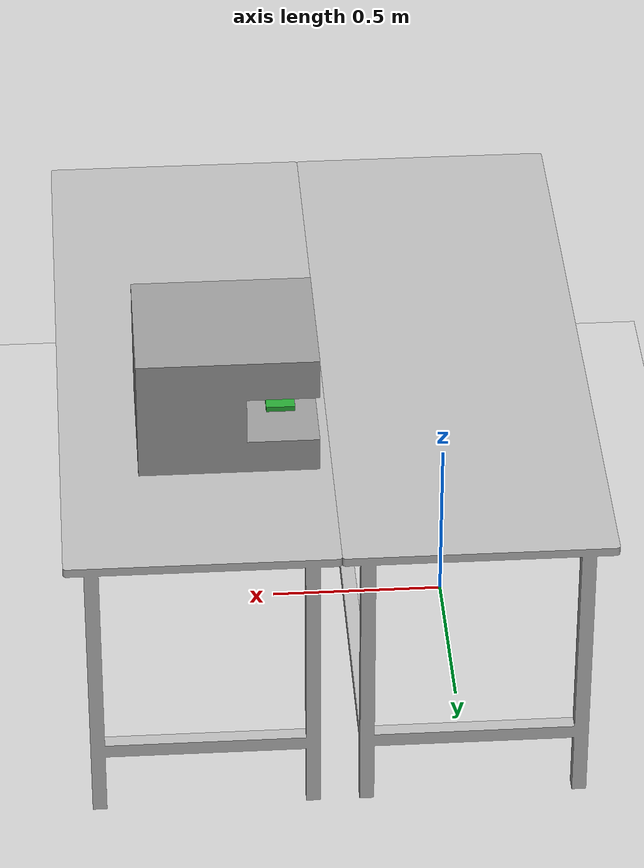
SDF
<?xml version="1.0" ?>
<sdf version="1.4">
	<world name="world">
		<light type="directional" name="some_light">
			<pose>-3.0 0.4 0.5 0 -1.4 0</pose>
			<diffuse>0.4 0.4 0.4 0</diffuse>
			<specular>0.8 0.8 0.8 0</specular>
			<direction>-1 -1 0</direction>
		</light>

		<include>
			<uri>model://ground_plane</uri>
		</include>

		<include>
			<uri>model://sun</uri>
			<pose>-5.0 0.0 3.0 0 0 0</pose>
		</include>

		<include>
			<uri>model://table</uri>
			<name>Table</name>
			<static>true</static>
			<pose>0.0 0.0 0.0 0 0 0</pose>
		</include>
		<include>
			<uri>model://table</uri>
			<name>Table2</name>
			<static>true</static>
			<pose>0.75 0.0 0.0 0 0 0</pose>
		</include>

		<include>
			<uri>model://HPLC</uri>
			<name>HPLC</name>
			<static>true</static>
			<pose>0.90 0.60 0.90 0 0 0</pose>
		</include>

		<model name="unit_box_grasp">
			<pose>0.50 0.40 1.0 0 0 0</pose>
			<static>false</static>
			<link name="link">
				<inertial>
					<mass>0.4</mass>
					<inertia>
						<ixx>1.1248e-04</ixx>
						<ixy>0.0</ixy>
						<ixz>0.0</ixz>
						<iyy>0.3149e-04</iyy>
						<iyz>0.0</iyz>
						<izz>0.3149e-04</izz>
					</inertia>
				</inertial>
				<collision name="collision">
					<geometry>
						<box>
							<size>0.08 0.12 0.03</size>
						</box>
					</geometry>
					<surface>
						<contact>
							<ode>
								<soft_cfm>0.2</soft_cfm>
								<soft_erp>0.2</soft_erp>
								<kp>1e5</kp>
								<kd>1.0</kd>
							</ode>
						</contact>

						<friction>
							<ode>
								<mu>1e16</mu>
								<mu2>1e16</mu2>
								<fdir1>1.000000 1.000000 1.000000</fdir1>
							</ode>
						</friction>
						<contact>
							<ode>
								<max_vel>0.1</max_vel>
								<min_depth>0.001</min_depth>
							</ode>
						</contact>
					</surface>
				</collision>
				<visual name="visual">
					<geometry>
						<box>
							<size>0.08 0.12 0.03</size>
						</box>
					</geometry>
					<material>
						<script>
							<uri>file://media/materials/scripts/gazebo.material</uri>
							<name>Gazebo/Green</name>
						</script>
					</material>
				</visual>
			</link>
		</model>

	</world>
</sdf>

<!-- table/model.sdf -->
<sdf version="1.5">
  <model name="Table">
    <static>true</static>
    <link name="link">
      <visual name="visual">
        <geometry>
          <mesh>
            <uri>model://table/meshes/table.dae</uri>
          </mesh>
        </geometry>
      </visual>
      <!-- collision -->
      <collision name="collision">
        <geometry>
          <mesh>
            <uri>model://table/meshes/table.dae</uri>
          </mesh>
        </geometry>
        <surface>
          <friction>
            <ode>
              <mu>10</mu>
              <mu2>10</mu2>
            </ode>
          </friction>
        </surface>
      </collision>
    </link>
  </model>

</sdf>

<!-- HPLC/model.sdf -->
<sdf version="1.5">
  <model name="HPLC">
    <static>true</static>
    <link name="link">
      <visual name="visual">
        <geometry>
          <mesh>
            <uri>model://HPLC/meshes/hplc_box.dae</uri>
          </mesh>
        </geometry>
        <material>
						<script>
							<uri>file://media/materials/scripts/gazebo.material</uri>
							<name>Gazebo/Grey</name>
						</script>
				</material>
      </visual>
      <!-- collision -->
      <collision name="collision">
        <geometry>
          <mesh>
            <uri>model://HPLC/collision/hplc_box.stl</uri>
          </mesh>
        </geometry>
        <surface>
          <friction>
            <ode>
              <mu>10</mu>
              <mu2>10</mu2>
            </ode>
          </friction>
        </surface>
      </collision>
    </link>
  </model>

</sdf>
